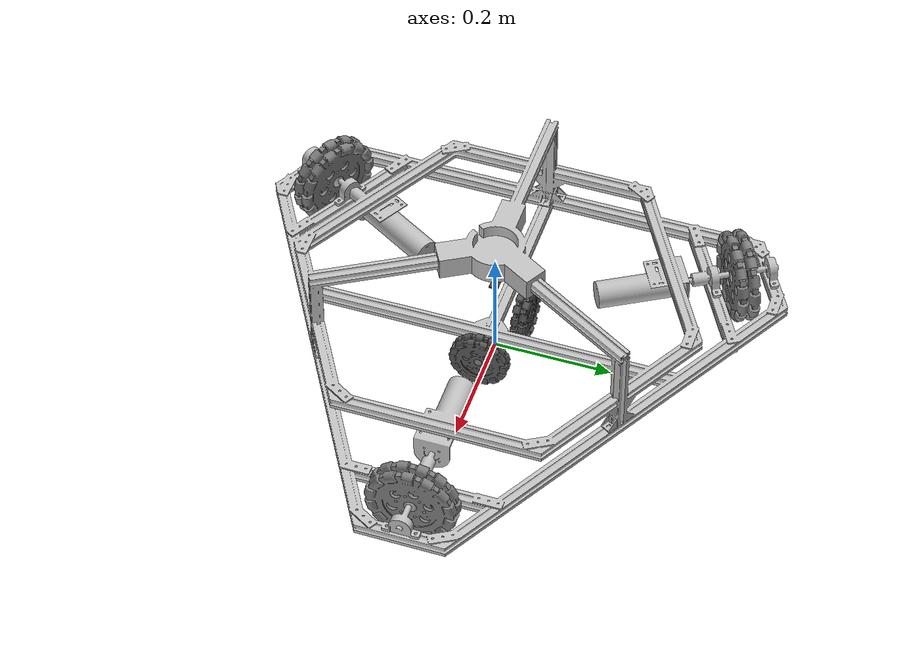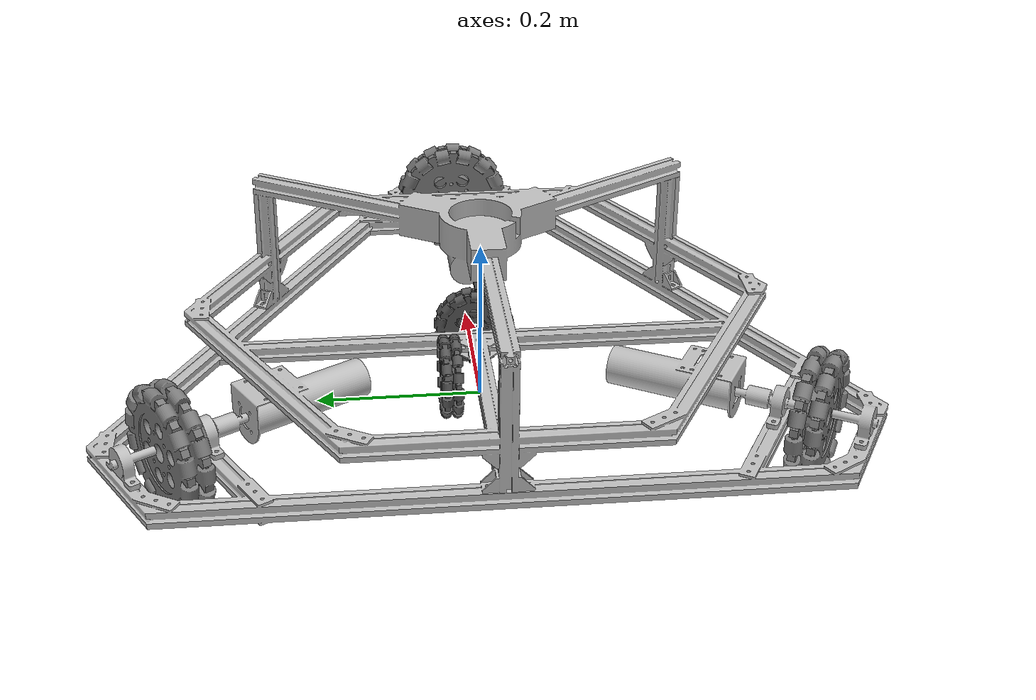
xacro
<?xml version="1.0"?>
<robot xmlns:xacro="http://www.ros.org/wiki/xacro" name="rviz_Omni-Bot">
  <!--           Includes            -->
  <xacro:include filename="wheels.xacro" />
  <xacro:include filename="lidar.xacro" />
  <xacro:include filename="imu.xacro" />
  <xacro:include filename="ros2_control.xacro" />

  <!--      Parameters (in SI)       -->
  <xacro:property name="base_side_length" value="1.05" />
  <xacro:property name="base_width" value="0.048" />
  <xacro:property name="base_mass" value="3.214" />

  <!--        Derived Params         -->
  <xacro:property name="bot_radius" value="${base_side_length / sqrt(3) - 0.215}" />
  <xacro:property name="wheel_offset" value="0.02" />

  <link name="base_footprint" />

  <joint name="base_joint" type="fixed">
    <parent link="base_footprint" />
    <child link="base_link" />
    <origin xyz="0 0 ${wheel_radius}" />
  </joint>

  <link name="base_link">
    <visual>
      <origin xyz="-${base_side_length*sqrt(3)/6} 0.0 -${base_width/1.5}" rpy="0.0 0.0 ${-pi/3}" />
      <geometry>
        <mesh filename="package://omni_bot_description/description/stl/chassis.stl" />
      </geometry>
      <material name="light_gray">
        <color rgba="0.75 0.75 0.75 1.0" />
      </material>
    </visual>
    <collision>
      <origin xyz="-${base_side_length*sqrt(3)/6} 0.0 -${base_width/1.5}" rpy="0.0 0.0 ${-pi/3}" />
      <geometry>
        <mesh filename="package://omni_bot_description/description/stl/chassis.stl" />
      </geometry>
    </collision>
    <inertial>
      <origin xyz="0.0 0.0 0.0" />
      <mass value="${base_mass}" />
      <inertia ixx="0.1798003" ixy="0.0024346" ixz="-0.0001306" iyy="0.1827598" iyz="-0.0002425" izz="0.3538762" />
    </inertial>
  </link>

  <!-- IMU frame placed 0.148 m above base_footprint origin -->
  <xacro:imu_mpu6050 parent="base_footprint">
    <origin xyz="0 0 0.148" rpy="0 0 0" />
  </xacro:imu_mpu6050>

  <!-- LiDAR mounted 0.235m above base_footprint -->

  <xacro:wheel_preset i="0" parent="base_link" />
  <xacro:wheel_preset i="1" parent="base_link" />
  <xacro:wheel_preset i="2" parent="base_link" />

  <xacro:encoder_preset i="X" parent="base_footprint">
    <origin xyz="-0.04 0.04 ${encoder_radius}" rpy="0.0 ${-pi/2} ${-pi/2}" />
  </xacro:encoder_preset>
  <xacro:encoder_preset i="Y" parent="base_footprint">
    <origin xyz="0.08 0.0 ${encoder_radius}" rpy="${-pi/2} 0.0 ${-pi/2}" />
  </xacro:encoder_preset>
</robot>

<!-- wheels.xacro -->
<robot xmlns:xacro="http://www.ros.org/wiki/xacro">
  <!--      Parameters (in SI)       -->
  <xacro:property name="plate_mass" value="0.21" />
  <xacro:property name="plate_radius" value="0.0675" />
  <xacro:property name="plate_gap" value="0.02" />

  <xacro:property name="roller_mass" value="0.008" />
  <xacro:property name="roller_radius" value="0.0095" />
  <xacro:property name="roller_length" value="0.018" />

  <xacro:property name="wheel_radius" value="${plate_radius + roller_radius}" />
  <xacro:property name="encoder_radius" value="0.05" />

  <!--      Wheel macro       -->
  <xacro:macro name="wheel" params="i parent">
    <!--     Get wheel position      -->
    <xacro:property name="angle" value="${i * 2 * pi/3}" />
    <xacro:property name="x" value="${(bot_radius + wheel_offset) * cos(angle)}" />
    <xacro:property name="y" value="${(bot_radius + wheel_offset) * sin(angle)}" />

    <joint name="wheel_joint_${i}" type="continuous">
      <parent link="${parent}" />
      <child link="wheel_${i}" />
      <origin xyz="${x} ${y} 0" rpy="0 ${pi/2} ${angle}" />
      <axis xyz="0 0 1" />
      <dynamics damping="25e-4" friction="1e-4" />
    </joint>

    <link name="wheel_${i}">
      <!-- A simple collision geometry -->
      <collision>
        <geometry>
          <cylinder radius="${plate_radius}" length="${plate_gap}" />
        </geometry>
      </collision>
      <!-- Fake Inertial (Actual values in plate)-->
      <inertial>
        <mass value="1e-6" />
        <inertia ixx="1e-9" ixy="0" ixz="0" iyy="1e-9" iyz="0" izz="1e-9" />
      </inertial>
    </link>

    <xacro:plate i="-1" parent="wheel_${i}" />
    <xacro:plate i="1" parent="wheel_${i}" />
  </xacro:macro>

  <xacro:macro name="plate" params="i parent scale=1">
    <!--     Get plate position      -->
    <joint name="${parent}_plate_joint_${i}" type="fixed">
      <parent link="${parent}" />
      <child link="${parent}_plate_${i}" />
      <origin xyz="0 0 ${i * plate_gap/2}" rpy="0 0 ${i * pi/28}" />
    </joint>

    <link name="${parent}_plate_${i}">
      <visual>
        <origin xyz="0 0 0" rpy="${pi/2} 0 0" />
        <geometry>
          <mesh filename="$(find omni_bot_description)/description/stl/omni_wheel_plate.stl" scale="${scale} ${scale} ${scale}" />
        </geometry>
        <material name="gray">
          <color rgba="0.5 0.5 0.5 1.0" />
          <ambient>0.1 0.1 0.1 1</ambient>
          <diffuse>0.2 0.2 0.2 1</diffuse>
          <specular>0.1 0.1 0.1 1</specular>
        </material>
      </visual>
    </link>

    <!--   Add rollers to plate    -->
    <xacro:roller i="0" parent="${parent}_plate_${i}" scale="${scale}" />
    <xacro:roller i="1" parent="${parent}_plate_${i}" scale="${scale}" />
    <xacro:roller i="2" parent="${parent}_plate_${i}" scale="${scale}" />
    <xacro:roller i="3" parent="${parent}_plate_${i}" scale="${scale}" />
    <xacro:roller i="4" parent="${parent}_plate_${i}" scale="${scale}" />
    <xacro:roller i="5" parent="${parent}_plate_${i}" scale="${scale}" />
    <xacro:roller i="6" parent="${parent}_plate_${i}" scale="${scale}" />
    <xacro:roller i="7" parent="${parent}_plate_${i}" scale="${scale}" />
    <xacro:roller i="8" parent="${parent}_plate_${i}" scale="${scale}" />
    <xacro:roller i="9" parent="${parent}_plate_${i}" scale="${scale}" />
    <xacro:roller i="10" parent="${parent}_plate_${i}" scale="${scale}" />
    <xacro:roller i="11" parent="${parent}_plate_${i}" scale="${scale}" />
    <xacro:roller i="12" parent="${parent}_plate_${i}" scale="${scale}" />
    <xacro:roller i="13" parent="${parent}_plate_${i}" scale="${scale}" />
  </xacro:macro>

  <xacro:macro name="roller" params="i parent scale=1">
    <!--     Get roller position      -->
    <xacro:property name="angle" value="${i * pi/7 + pi/14}" />
    <xacro:property name="x" value="${plate_radius * cos(angle) * scale}" />
    <xacro:property name="y" value="${plate_radius * sin(angle) * scale}" />

    <joint name="${parent}_roller_joint_${i}" type="continuous">
      <parent link="${parent}" />
      <child link="${parent}_roller_${i}" />
      <origin xyz="${x} ${y} 0" rpy="${pi/2} 0 ${angle}" />
      <axis xyz="0 0 1" />
      <dynamics damping="1e-5" friction="1e-5" />
    </joint>

    <link name="${parent}_roller_${i}">
      <visual>
        <origin xyz="0 0 0" rpy="0 ${pi/2} 0" />
        <geometry>
          <mesh filename="$(find omni_bot_description)/description/stl/omni_wheel_roller.stl" scale="${scale} ${scale} ${scale}" />
        </geometry>
        <material name="black">
          <color rgba="0.1 0.1 0.1 1.0" />
          <ambient>0.02 0.02 0.02 1</ambient>
          <diffuse>0.05 0.05 0.05 1</diffuse>
          <specular>0.01 0.01 0.01 1</specular>
        </material>
      </visual>
      <collision>
        <geometry>
          <cylinder radius="${roller_radius * scale}" length="${roller_length * scale}" />
        </geometry>
      </collision>
      <inertial>
        <mass value="${roller_mass}" />
        <inertia ixx="3.111e-7" ixy="0.0" ixz="0.0" iyy="3.600e-7" iyz="0.0" izz="3.600e-7" />
      </inertial>
    </link>
  </xacro:macro>

  <!--        Encoder Wheels        -->
  <xacro:macro name="encoder" params="i parent">
    <xacro:property name="encoder_scale" value="${100/152}" />

    <joint name="encoder_joint_${i}" type="continuous">
      <parent link="${parent}" />
      <child link="encoder_${i}" />
      <axis xyz="0 0 1" />
    </joint>

    <link name="encoder_${i}">
      <!-- A simple collision geometry -->
      <collision>
        <geometry>
          <cylinder radius="${plate_radius * encoder_scale}" length="${plate_gap * encoder_scale}" />
        </geometry>
      </collision>
      <!-- Fake Inertial (Actual values in plate)-->
      <inertial>
        <mass value="1e-6" />
        <inertia ixx="1e-9" ixy="0" ixz="0" iyy="1e-9" iyz="0" izz="1e-9" />
      </inertial>
    </link>

    <xacro:plate i="0" parent="encoder_${i}" scale="${encoder_scale}" />
  </xacro:macro>

  <!--        Preset Wheels          -->
  <xacro:macro name="wheel_preset" params="i parent">
    <!--     Get wheel position      -->
    <xacro:property name="angle" value="${i * 2 * pi/3}" />
    <xacro:property name="x" value="${(bot_radius + wheel_offset) * cos(angle)}" />
    <xacro:property name="y" value="${(bot_radius + wheel_offset) * sin(angle)}" />

    <joint name="wheel_joint_${i}" type="continuous">
      <parent link="${parent}" />
      <child link="wheel_${i}" />
      <origin xyz="${x} ${y} 0" rpy="0 ${pi/2} ${angle}" />
      <axis xyz="0 0 1" />
    </joint>

    <link name="wheel_${i}">
      <visual>
        <origin xyz="0.0 0.0 0.0" rpy="${pi/2} 0.0 0.0" />
        <geometry>
          <mesh filename="package://omni_bot_description/description/stl/omni_wheel_152mm.stl" />
        </geometry>
        <material name="gray">
          <color rgba="0.5 0.5 0.5 1.0" />
        </material>
      </visual>
      <collision>
        <geometry>
          <cylinder radius="${wheel_radius}" length="${plate_gap + 2*roller_radius}" />
        </geometry>
      </collision>
    </link>
  </xacro:macro>

  <!--        Encoder Preset Wheels        -->
  <xacro:macro name="encoder_preset" params="i parent *origin">
    <xacro:property name="encoder_scale" value="${100/152}" />

    <joint name="encoder_joint_${i}" type="continuous">
      <parent link="${parent}" />
      <child link="encoder_${i}" />
      <xacro:insert_block name="origin" />
      <axis xyz="0 0 1" />
    </joint>

    <link name="encoder_${i}">
      <visual>
        <origin xyz="0.0 0.0 0.0" rpy="${pi/2} 0.0 0.0" />
        <geometry>
          <mesh filename="package://omni_bot_description/description/stl/omni_wheel_152mm.stl" scale="${encoder_scale} ${encoder_scale} ${encoder_scale}" />
        </geometry>
        <material name="dark_gray">
          <color rgba="0.35 0.35 0.35 1.0" />
        </material>
      </visual>
      <collision>
        <geometry>
          <cylinder radius="${wheel_radius * encoder_scale}" length="${(plate_gap + 2*roller_radius) * encoder_scale}" />
        </geometry>
      </collision>
    </link>
  </xacro:macro>

  <!--             test(wheels)              -->

  <!--          test(preset)           -->
</robot>

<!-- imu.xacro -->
<robot xmlns:xacro="http://www.ros.org/wiki/xacro">

  <!-- IMU Sensor Macro: spawn an IMU sensor with position and orientation -->
  <xacro:macro name="imu_mpu6050" params="parent *origin">
    <joint name="imu_joint" type="fixed">
      <xacro:insert_block name="origin" />
      <parent link="${parent}" />
      <child link="imu_link" />
    </joint>

    <link name="imu_link">
      <visual>
        <origin xyz="0 0 0" rpy="0 0 0" />
        <geometry>
          <box size="0.02 0.015 0.003" />
        </geometry>
        <material name="dark_gray">
          <color rgba="0.25 0.25 0.25 1.0" />
        </material>
      </visual>
      <collision>
        <origin xyz="0 0 0" rpy="0 0 0" />
        <geometry>
          <box size="0.02 0.015 0.003" />
        </geometry>
      </collision>
      <inertial>
        <origin xyz="0 0 0" rpy="0 0 0" />
        <mass value="0.01" />
        <!-- Standard compact IMU: 20x20x10mm box, 10g mass -->
        <inertia ixx="1e-6" ixy="0.0" ixz="0.0" iyy="1e-6" iyz="0.0" izz="1e-6" />
      </inertial>
    </link>

  </xacro:macro>
</robot>
